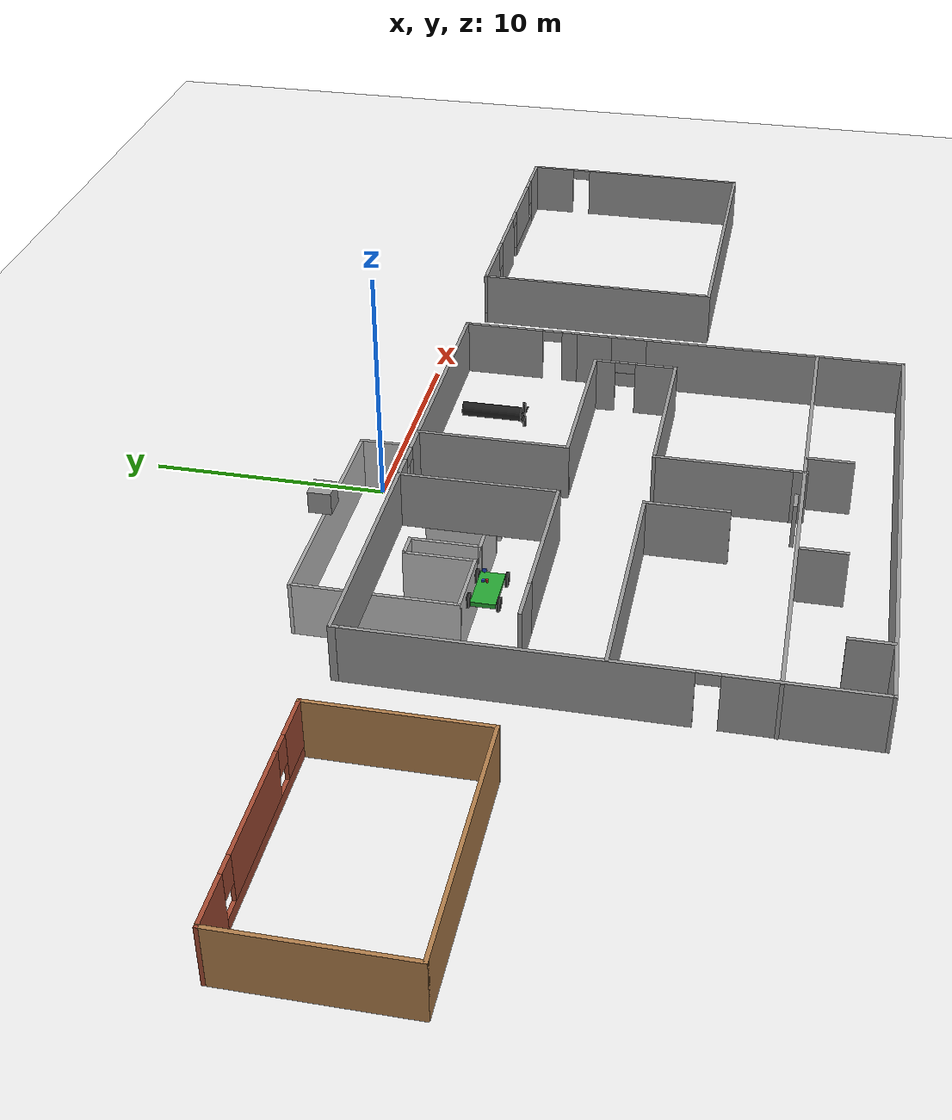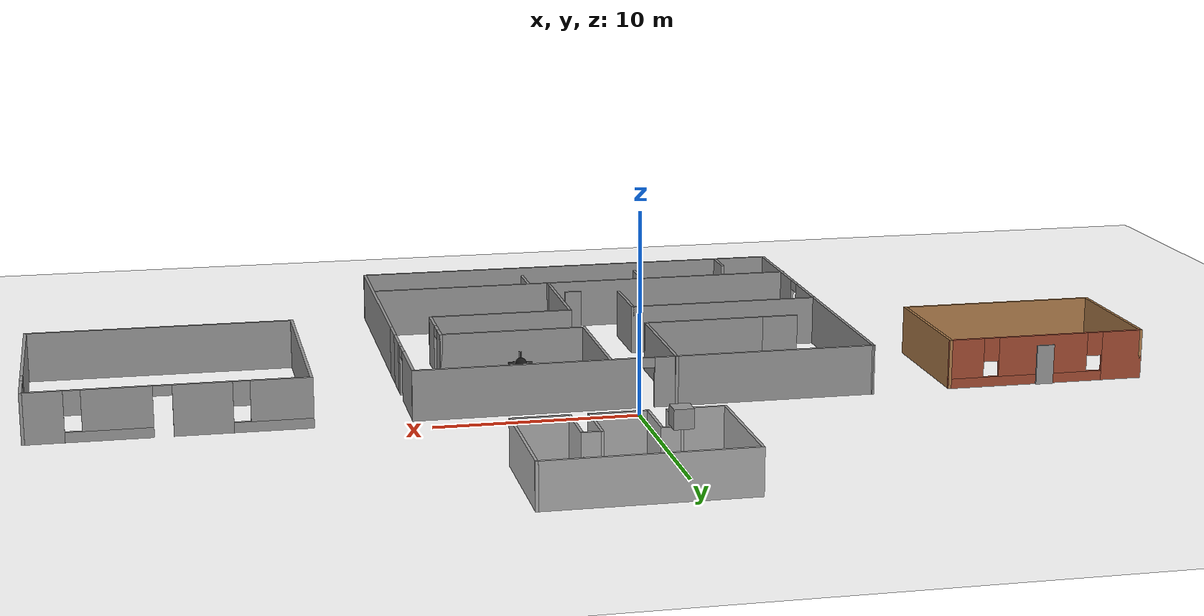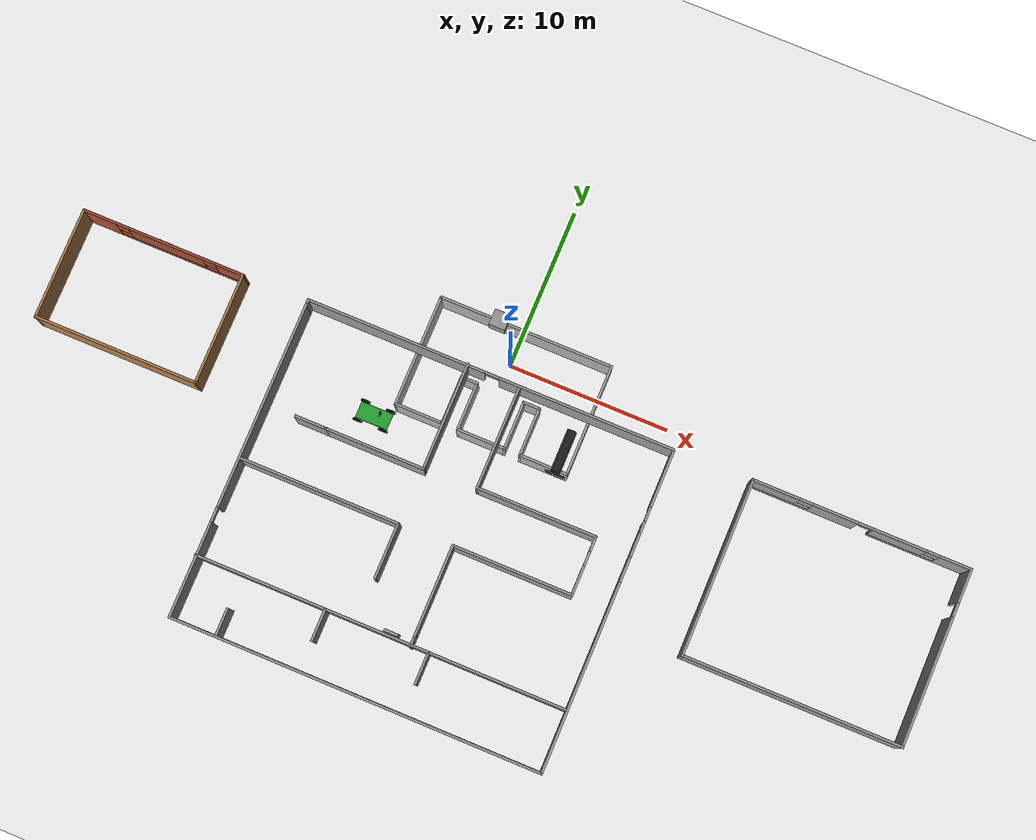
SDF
<sdf version="1.7">
 <world name="default">
  <light name="sun" type="directional">
   <pose>0 0 10 0 -0 0</pose>
   <diffuse>0.8 0.8 0.8 1</diffuse>
   <specular>0.2 0.2 0.2 1</specular>
   <attenuation>
    <range>1000</range>
    <constant>0.9</constant>
    <linear>0.01</linear>
    <quadratic>0.001</quadratic>
   </attenuation>
   <direction>-0.5 0.1 -0.9</direction>
   <spot><inner_angle>0</inner_angle><outer_angle>0</outer_angle><falloff>0</falloff></spot>
  </light>
  <model name="ground_plane">
   <static>1</static>
   <link name="link">
    <collision name="collision">
     <geometry><plane><normal>0 0 1</normal><size>100 100</size></plane></geometry>
     <surface>
      <contact><collide_bitmask>65535</collide_bitmask></contact>
      <friction><ode><mu>100</mu><mu2>50</mu2></ode></friction>
     </surface>
    </collision>
    <visual name="visual">
     <cast_shadows>0</cast_shadows>
     <geometry><plane><normal>0 0 1</normal><size>100 100</size></plane></geometry>
     <material>
      <script><uri>file://media/materials/scripts/gazebo.material</uri><name>Gazebo/Grey</name></script>
     </material>
    </visual>
   </link>
  </model>
  <gravity>0 0 -9.8</gravity>
  <magnetic_field>6e-06 2.3e-05 -4.2e-05</magnetic_field>
  <atmosphere type="adiabatic"/>
  <physics name="default_physics" default="0" type="ode">
   <max_step_size>0.001</max_step_size>
   <real_time_factor>1</real_time_factor>
   <real_time_update_rate>1000</real_time_update_rate>
  </physics>
  <scene><ambient>0.4 0.4 0.4 1</ambient><background>0.7 0.7 0.7 1</background><shadows>1</shadows></scene>
  <spherical_coordinates>
   <surface_model>EARTH_WGS84</surface_model>
   <latitude_deg>0</latitude_deg>
   <longitude_deg>0</longitude_deg>
   <elevation>0</elevation>
   <heading_deg>0</heading_deg>
  </spherical_coordinates>
  <model name="warehouse">
   <pose>0 -1 -3.63535 0 -0 0</pose>
   <link name="Wall_13">
    <collision name="Wall_13_Collision">
     <geometry><box><size>7.15 0.15 2.5</size></box></geometry>
     <pose>0 0 1.25 0 -0 0</pose>
    </collision>
    <visual name="Wall_13_Visual">
     <pose>0 0 1.25 0 -0 0</pose>
     <geometry><box><size>7.15 0.15 2.5</size></box></geometry>
     <material>
      <script><uri>file://media/materials/scripts/gazebo.material</uri><name>Gazebo/Grey</name></script>
      <ambient>1 1 1 1</ambient>
     </material>
     <meta><layer>0</layer></meta>
    </visual>
    <pose>-5.5 0 0 0 -0 -1.5708</pose>
   </link>
   <link name="Wall_14">
    <collision name="Wall_14_Collision">
     <geometry><box><size>3.15 0.15 2.5</size></box></geometry>
     <pose>0 0 1.25 0 -0 0</pose>
    </collision>
    <visual name="Wall_14_Visual">
     <pose>0 0 1.25 0 -0 0</pose>
     <geometry><box><size>3.15 0.15 2.5</size></box></geometry>
     <material>
      <script><uri>file://media/materials/scripts/gazebo.material</uri><name>Gazebo/Grey</name></script>
      <ambient>1 1 1 1</ambient>
     </material>
     <meta><layer>0</layer></meta>
    </visual>
    <pose>-4 -3.5 0 0 -0 0</pose>
   </link>
   <link name="Wall_15">
    <collision name="Wall_15_Collision">
     <geometry><box><size>3.15 0.15 2.5</size></box></geometry>
     <pose>0 0 1.25 0 -0 0</pose>
    </collision>
    <visual name="Wall_15_Visual">
     <pose>0 0 1.25 0 -0 0</pose>
     <geometry><box><size>3.15 0.15 2.5</size></box></geometry>
     <material>
      <script><uri>file://media/materials/scripts/gazebo.material</uri><name>Gazebo/Grey</name></script>
      <ambient>1 1 1 1</ambient>
     </material>
     <meta><layer>0</layer></meta>
    </visual>
    <pose>-2.5 -2 0 0 -0 1.5708</pose>
   </link>
   <link name="Wall_16">
    <collision name="Wall_16_Collision">
     <geometry><box><size>1.15 0.15 2.5</size></box></geometry>
     <pose>0 0 1.25 0 -0 0</pose>
    </collision>
    <visual name="Wall_16_Visual">
     <pose>0 0 1.25 0 -0 0</pose>
     <geometry><box><size>1.15 0.15 2.5</size></box></geometry>
     <material>
      <script><uri>file://media/materials/scripts/gazebo.material</uri><name>Gazebo/Grey</name></script>
      <ambient>1 1 1 1</ambient>
     </material>
     <meta><layer>0</layer></meta>
    </visual>
    <pose>-2 -0.5 0 0 -0 0</pose>
   </link>
   <link name="Wall_17">
    <collision name="Wall_17_Collision">
     <geometry><box><size>3.15 0.15 2.5</size></box></geometry>
     <pose>0 0 1.25 0 -0 0</pose>
    </collision>
    <visual name="Wall_17_Visual">
     <pose>0 0 1.25 0 -0 0</pose>
     <geometry><box><size>3.15 0.15 2.5</size></box></geometry>
     <material>
      <script><uri>file://media/materials/scripts/gazebo.material</uri><name>Gazebo/Grey</name></script>
      <ambient>1 1 1 1</ambient>
     </material>
     <meta><layer>0</layer></meta>
    </visual>
    <pose>-1.5 -2 0 0 -0 -1.5708</pose>
   </link>
   <link name="Wall_18">
    <collision name="Wall_18_Collision">
     <geometry><box><size>3.15 0.15 2.5</size></box></geometry>
     <pose>0 0 1.25 0 -0 0</pose>
    </collision>
    <visual name="Wall_18_Visual">
     <pose>0 0 1.25 0 -0 0</pose>
     <geometry><box><size>3.15 0.15 2.5</size></box></geometry>
     <material>
      <script><uri>file://media/materials/scripts/gazebo.material</uri><name>Gazebo/Grey</name></script>
      <ambient>1 1 1 1</ambient>
     </material>
     <meta><layer>0</layer></meta>
    </visual>
    <pose>0 -3.5 0 0 -0 0</pose>
   </link>
   <link name="Wall_19">
    <collision name="Wall_19_Collision">
     <geometry><box><size>3.15 0.15 2.5</size></box></geometry>
     <pose>0 0 1.25 0 -0 0</pose>
    </collision>
    <visual name="Wall_19_Visual">
     <pose>0 0 1.25 0 -0 0</pose>
     <geometry><box><size>3.15 0.15 2.5</size></box></geometry>
     <material>
      <script><uri>file://media/materials/scripts/gazebo.material</uri><name>Gazebo/Grey</name></script>
      <ambient>1 1 1 1</ambient>
     </material>
     <meta><layer>0</layer></meta>
    </visual>
    <pose>1.5 -2 0 0 -0 1.5708</pose>
   </link>
   <link name="Wall_20">
    <collision name="Wall_20_Collision">
     <geometry><box><size>1.15 0.15 2.5</size></box></geometry>
     <pose>0 0 1.25 0 -0 0</pose>
    </collision>
    <visual name="Wall_20_Visual">
     <pose>0 0 1.25 0 -0 0</pose>
     <geometry><box><size>1.15 0.15 2.5</size></box></geometry>
     <material>
      <script><uri>file://media/materials/scripts/gazebo.material</uri><name>Gazebo/Grey</name></script>
      <ambient>1 1 1 1</ambient>
     </material>
     <meta><layer>0</layer></meta>
    </visual>
    <pose>2 -0.5 0 0 -0 0</pose>
   </link>
   <link name="Wall_21">
    <collision name="Wall_21_Collision">
     <geometry><box><size>3.15 0.15 2.5</size></box></geometry>
     <pose>0 0 1.25 0 -0 0</pose>
    </collision>
    <visual name="Wall_21_Visual">
     <pose>0 0 1.25 0 -0 0</pose>
     <geometry><box><size>3.15 0.15 2.5</size></box></geometry>
     <material>
      <script><uri>file://media/materials/scripts/gazebo.material</uri><name>Gazebo/Grey</name></script>
      <ambient>1 1 1 1</ambient>
     </material>
     <meta><layer>0</layer></meta>
    </visual>
    <pose>2.5 -2 0 0 -0 -1.5708</pose>
   </link>
   <link name="Wall_22">
    <collision name="Wall_22_Collision">
     <geometry><box><size>3.15 0.15 2.5</size></box></geometry>
     <pose>0 0 1.25 0 -0 0</pose>
    </collision>
    <visual name="Wall_22_Visual">
     <pose>0 0 1.25 0 -0 0</pose>
     <geometry><box><size>3.15 0.15 2.5</size></box></geometry>
     <material>
      <script><uri>file://media/materials/scripts/gazebo.material</uri><name>Gazebo/Grey</name></script>
      <ambient>1 1 1 1</ambient>
     </material>
     <meta><layer>0</layer></meta>
    </visual>
    <pose>4 -3.5 0 0 -0 0</pose>
   </link>
   <link name="Wall_23">
    <collision name="Wall_23_Collision">
     <geometry><box><size>7.15 0.15 2.5</size></box></geometry>
     <pose>0 0 1.25 0 -0 0</pose>
    </collision>
    <visual name="Wall_23_Visual">
     <pose>0 0 1.25 0 -0 0</pose>
     <geometry><box><size>7.15 0.15 2.5</size></box></geometry>
     <material>
      <script><uri>file://media/materials/scripts/gazebo.material</uri><name>Gazebo/Grey</name></script>
      <ambient>1 1 1 1</ambient>
     </material>
     <meta><layer>0</layer></meta>
    </visual>
    <pose>5.5 0 0 0 -0 1.5708</pose>
   </link>
   <link name="Wall_24">
    <collision name="Wall_24_Collision">
     <geometry><box><size>11.15 0.15 2.5</size></box></geometry>
     <pose>0 0 1.25 0 -0 0</pose>
    </collision>
    <visual name="Wall_24_Visual">
     <pose>0 0 1.25 0 -0 0</pose>
     <geometry><box><size>11.15 0.15 2.5</size></box></geometry>
     <material>
      <script><uri>file://media/materials/scripts/gazebo.material</uri><name>Gazebo/Grey</name></script>
      <ambient>1 1 1 1</ambient>
     </material>
     <meta><layer>0</layer></meta>
    </visual>
    <pose>0 3.5 0 0 -0 3.14159</pose>
   </link>
   <static>1</static>
  </model>
  <model name="Generic_1_room_house_1">
   <pose>-21.2646 -3.37904 0 0 -0 0</pose>
   <link name="Door_6">
    <collision name="Door_6_Collision">
     <geometry><box><size>0.9 0.17 2</size></box></geometry>
     <pose>0 0 1 0 -0 0</pose>
    </collision>
    <visual name="Door_6_Visual">
     <pose>0 0 1 0 -0 0</pose>
     <geometry><box><size>0.9 0.17 2</size></box></geometry>
     <material>
      <script><uri>file://media/materials/scripts/gazebo.material</uri><name>Gazebo/Grey</name></script>
     </material>
    </visual>
    <pose>0.067315 2.02255 0 0 -0 3.13799</pose>
   </link>
   <link name="Wall_22">
    <pose>-0 1.93414 0 0 -0 0</pose>
    <visual name="Wall_22_Visual_0">
     <pose>-4.05311 0 1.25 0 -0 0</pose>
     <geometry><box><size>2.14379 0.15 2.5</size></box></geometry>
     <material>
      <script><uri>file://media/materials/scripts/gazebo.material</uri><name>Gazebo/Bricks</name></script>
      <ambient>1 1 1 1</ambient>
     </material>
     <meta><layer>0</layer></meta>
    </visual>
    <collision name="Wall_22_Collision_0">
     <geometry><box><size>2.14379 0.15 2.5</size></box></geometry>
     <pose>-4.05311 0 1.25 0 -0 0</pose>
    </collision>
    <visual name="Wall_22_Visual_1">
     <pose>1.0719 0 0.25 0 -0 0</pose>
     <geometry><box><size>8.10621 0.15 0.5</size></box></geometry>
     <material>
      <script><uri>file://media/materials/scripts/gazebo.material</uri><name>Gazebo/Bricks</name></script>
      <ambient>1 1 1 1</ambient>
     </material>
     <meta><layer>0</layer></meta>
    </visual>
    <collision name="Wall_22_Collision_1">
     <geometry><box><size>8.10621 0.15 0.5</size></box></geometry>
     <pose>1.0719 0 0.25 0 -0 0</pose>
    </collision>
    <visual name="Wall_22_Visual_2">
     <pose>0.160358 0 1.5 0 -0 0</pose>
     <geometry><box><size>4.68314 0.15 2</size></box></geometry>
     <material>
      <script><uri>file://media/materials/scripts/gazebo.material</uri><name>Gazebo/Bricks</name></script>
      <ambient>1 1 1 1</ambient>
     </material>
     <meta><layer>0</layer></meta>
    </visual>
    <collision name="Wall_22_Collision_2">
     <geometry><box><size>4.68314 0.15 2</size></box></geometry>
     <pose>0.160358 0 1.5 0 -0 0</pose>
    </collision>
    <visual name="Wall_22_Visual_3">
     <pose>4.21346 0 1.5 0 -0 0</pose>
     <geometry><box><size>1.82308 0.15 2</size></box></geometry>
     <material>
      <script><uri>file://media/materials/scripts/gazebo.material</uri><name>Gazebo/Bricks</name></script>
      <ambient>1 1 1 1</ambient>
     </material>
     <meta><layer>0</layer></meta>
    </visual>
    <collision name="Wall_22_Collision_3">
     <geometry><box><size>1.82308 0.15 2</size></box></geometry>
     <pose>4.21346 0 1.5 0 -0 0</pose>
    </collision>
    <visual name="Wall_22_Visual_4">
     <pose>-2.58121 0 1.9 0 -0 0</pose>
     <geometry><box><size>0.8 0.15 1.2</size></box></geometry>
     <material>
      <script><uri>file://media/materials/scripts/gazebo.material</uri><name>Gazebo/Bricks</name></script>
      <ambient>1 1 1 1</ambient>
     </material>
     <meta><layer>0</layer></meta>
    </visual>
    <collision name="Wall_22_Collision_4">
     <geometry><box><size>0.8 0.15 1.2</size></box></geometry>
     <pose>-2.58121 0 1.9 0 -0 0</pose>
    </collision>
    <visual name="Wall_22_Visual_5">
     <pose>2.90192 0 1.9 0 -0 0</pose>
     <geometry><box><size>0.8 0.15 1.2</size></box></geometry>
     <material>
      <script><uri>file://media/materials/scripts/gazebo.material</uri><name>Gazebo/Bricks</name></script>
      <ambient>1 1 1 1</ambient>
     </material>
     <meta><layer>0</layer></meta>
    </visual>
    <collision name="Wall_22_Collision_5">
     <geometry><box><size>0.8 0.15 1.2</size></box></geometry>
     <pose>2.90192 0 1.9 0 -0 0</pose>
    </collision>
   </link>
   <link name="Wall_27">
    <collision name="Wall_27_Collision">
     <geometry><box><size>7 0.15 2.5</size></box></geometry>
     <pose>0 0 1.25 0 -0 0</pose>
    </collision>
    <visual name="Wall_27_Visual">
     <pose>0 0 1.25 0 -0 0</pose>
     <geometry><box><size>7 0.15 2.5</size></box></geometry>
     <material>
      <script><uri>file://media/materials/scripts/gazebo.material</uri><name>Gazebo/Wood</name></script>
      <ambient>1 1 1 1</ambient>
     </material>
     <meta><layer>0</layer></meta>
    </visual>
    <pose>-5.05 -1.49086 0 0 -0 -1.5708</pose>
   </link>
   <link name="Wall_28">
    <collision name="Wall_28_Collision">
     <geometry><box><size>10.25 0.15 2.5</size></box></geometry>
     <pose>0 0 1.25 0 -0 0</pose>
    </collision>
    <visual name="Wall_28_Visual">
     <pose>0 0 1.25 0 -0 0</pose>
     <geometry><box><size>10.25 0.15 2.5</size></box></geometry>
     <material>
      <script><uri>file://media/materials/scripts/gazebo.material</uri><name>Gazebo/Wood</name></script>
      <ambient>1 1 1 1</ambient>
     </material>
     <meta><layer>0</layer></meta>
    </visual>
    <pose>-0 -4.91586 0 0 -0 0</pose>
   </link>
   <link name="Wall_29">
    <collision name="Wall_29_Collision">
     <geometry><box><size>7 0.15 2.5</size></box></geometry>
     <pose>0 0 1.25 0 -0 0</pose>
    </collision>
    <visual name="Wall_29_Visual">
     <pose>0 0 1.25 0 -0 0</pose>
     <geometry><box><size>7 0.15 2.5</size></box></geometry>
     <material>
      <script><uri>file://media/materials/scripts/gazebo.material</uri><name>Gazebo/Wood</name></script>
      <ambient>1 1 1 1</ambient>
     </material>
     <meta><layer>0</layer></meta>
    </visual>
    <pose>5.05 -1.49086 0 0 -0 1.5708</pose>
   </link>
   <static>1</static>
  </model>
  <model name="Multi-Door_building">
   <pose>22.2268 -6.60509 0 0 -0 0</pose>
   <link name="Wall_5">
    <collision name="Wall_5_Collision">
     <geometry><box><size>11 0.15 2.5</size></box></geometry>
     <pose>0 0 1.25 0 -0 0</pose>
    </collision>
    <visual name="Wall_5_Visual">
     <pose>0 0 1.25 0 -0 0</pose>
     <geometry><box><size>11 0.15 2.5</size></box></geometry>
     <material>
      <script><uri>file://media/materials/scripts/gazebo.material</uri><name>Gazebo/Grey</name></script>
      <ambient>1 1 1 1</ambient>
     </material>
     <meta><layer>0</layer></meta>
    </visual>
    <pose>-6.675 -0 0 0 -0 -1.5708</pose>
   </link>
   <link name="Wall_6">
    <collision name="Wall_6_Collision">
     <geometry><box><size>13.5 0.15 2.5</size></box></geometry>
     <pose>0 0 1.25 0 -0 0</pose>
    </collision>
    <visual name="Wall_6_Visual">
     <pose>0 0 1.25 0 -0 0</pose>
     <geometry><box><size>13.5 0.15 2.5</size></box></geometry>
     <material>
      <script><uri>file://media/materials/scripts/gazebo.material</uri><name>Gazebo/Grey</name></script>
      <ambient>1 1 1 1</ambient>
     </material>
     <meta><layer>0</layer></meta>
    </visual>
    <pose>0 -5.425 0 0 -0 0</pose>
   </link>
   <link name="Wall_7">
    <pose>6.675 -0 0 0 -0 1.5708</pose>
    <visual name="Wall_7_Visual_0">
     <pose>-1.51662 0 1.25 0 -0 0</pose>
     <geometry><box><size>7.96675 0.15 2.5</size></box></geometry>
     <material>
      <script><uri>file://media/materials/scripts/gazebo.material</uri><name>Gazebo/Grey</name></script>
      <ambient>1 1 1 1</ambient>
     </material>
     <meta><layer>0</layer></meta>
    </visual>
    <collision name="Wall_7_Collision_0">
     <geometry><box><size>7.96675 0.15 2.5</size></box></geometry>
     <pose>-1.51662 0 1.25 0 -0 0</pose>
    </collision>
    <visual name="Wall_7_Visual_1">
     <pose>4.43338 0 1.25 0 -0 0</pose>
     <geometry><box><size>2.13325 0.15 2.5</size></box></geometry>
     <material>
      <script><uri>file://media/materials/scripts/gazebo.material</uri><name>Gazebo/Grey</name></script>
      <ambient>1 1 1 1</ambient>
     </material>
     <meta><layer>0</layer></meta>
    </visual>
    <collision name="Wall_7_Collision_1">
     <geometry><box><size>2.13325 0.15 2.5</size></box></geometry>
     <pose>4.43338 0 1.25 0 -0 0</pose>
    </collision>
    <visual name="Wall_7_Visual_2">
     <pose>2.91675 0 2.25 0 -0 0</pose>
     <geometry><box><size>0.9 0.15 0.5</size></box></geometry>
     <material>
      <script><uri>file://media/materials/scripts/gazebo.material</uri><name>Gazebo/Grey</name></script>
      <ambient>1 1 1 1</ambient>
     </material>
     <meta><layer>0</layer></meta>
    </visual>
    <collision name="Wall_7_Collision_2">
     <geometry><box><size>0.9 0.15 0.5</size></box></geometry>
     <pose>2.91675 0 2.25 0 -0 0</pose>
    </collision>
   </link>
   <link name="Wall_8">
    <pose>0 5.425 0 0 -0 3.14159</pose>
    <visual name="Wall_8_Visual_0">
     <pose>-5.75969 0 1.25 0 -0 0</pose>
     <geometry><box><size>1.98063 0.15 2.5</size></box></geometry>
     <material>
      <script><uri>file://media/materials/scripts/gazebo.material</uri><name>Gazebo/Grey</name></script>
      <ambient>1 1 1 1</ambient>
     </material>
     <meta><layer>0</layer></meta>
    </visual>
    <collision name="Wall_8_Collision_0">
     <geometry><box><size>1.98063 0.15 2.5</size></box></geometry>
     <pose>-5.75969 0 1.25 0 -0 0</pose>
    </collision>
    <visual name="Wall_8_Visual_1">
     <pose>1.6026 0 1.25 0 -0 0</pose>
     <geometry><box><size>2.791 0.15 2.5</size></box></geometry>
     <material>
      <script><uri>file://media/materials/scripts/gazebo.material</uri><name>Gazebo/Grey</name></script>
      <ambient>1 1 1 1</ambient>
     </material>
     <meta><layer>0</layer></meta>
    </visual>
    <collision name="Wall_8_Collision_1">
     <geometry><box><size>2.791 0.15 2.5</size></box></geometry>
     <pose>1.6026 0 1.25 0 -0 0</pose>
    </collision>
    <visual name="Wall_8_Visual_2">
     <pose>-2.73114 0 0.25 0 -0 0</pose>
     <geometry><box><size>4.07647 0.15 0.5</size></box></geometry>
     <material>
      <script><uri>file://media/materials/scripts/gazebo.material</uri><name>Gazebo/Grey</name></script>
      <ambient>1 1 1 1</ambient>
     </material>
     <meta><layer>0</layer></meta>
    </visual>
    <collision name="Wall_8_Collision_2">
     <geometry><box><size>4.07647 0.15 0.5</size></box></geometry>
     <pose>-2.73114 0 0.25 0 -0 0</pose>
    </collision>
    <visual name="Wall_8_Visual_3">
     <pose>4.87405 0 0.25 0 -0 0</pose>
     <geometry><box><size>3.7519 0.15 0.5</size></box></geometry>
     <material>
      <script><uri>file://media/materials/scripts/gazebo.material</uri><name>Gazebo/Grey</name></script>
      <ambient>1 1 1 1</ambient>
     </material>
     <meta><layer>0</layer></meta>
    </visual>
    <collision name="Wall_8_Collision_3">
     <geometry><box><size>3.7519 0.15 0.5</size></box></geometry>
     <pose>4.87405 0 0.25 0 -0 0</pose>
    </collision>
    <visual name="Wall_8_Visual_4">
     <pose>-2.33114 0 1.5 0 -0 0</pose>
     <geometry><box><size>3.27647 0.15 2</size></box></geometry>
     <material>
      <script><uri>file://media/materials/scripts/gazebo.material</uri><name>Gazebo/Grey</name></script>
      <ambient>1 1 1 1</ambient>
     </material>
     <meta><layer>0</layer></meta>
    </visual>
    <collision name="Wall_8_Collision_4">
     <geometry><box><size>3.27647 0.15 2</size></box></geometry>
     <pose>-2.33114 0 1.5 0 -0 0</pose>
    </collision>
    <visual name="Wall_8_Visual_5">
     <pose>-2.33114 0 1.5 0 -0 0</pose>
     <geometry><box><size>3.27647 0.15 2</size></box></geometry>
     <material>
      <script><uri>file://media/materials/scripts/gazebo.material</uri><name>Gazebo/Grey</name></script>
      <ambient>1 1 1 1</ambient>
     </material>
     <meta><layer>0</layer></meta>
    </visual>
    <collision name="Wall_8_Collision_5">
     <geometry><box><size>3.27647 0.15 2</size></box></geometry>
     <pose>-2.33114 0 1.5 0 -0 0</pose>
    </collision>
    <visual name="Wall_8_Visual_6">
     <pose>5.27405 0 1.5 0 -0 0</pose>
     <geometry><box><size>2.9519 0.15 2</size></box></geometry>
     <material>
      <script><uri>file://media/materials/scripts/gazebo.material</uri><name>Gazebo/Grey</name></script>
      <ambient>1 1 1 1</ambient>
     </material>
     <meta><layer>0</layer></meta>
    </visual>
    <collision name="Wall_8_Collision_6">
     <geometry><box><size>2.9519 0.15 2</size></box></geometry>
     <pose>5.27405 0 1.5 0 -0 0</pose>
    </collision>
    <visual name="Wall_8_Visual_7">
     <pose>-4.36937 0 1.9 0 -0 0</pose>
     <geometry><box><size>0.8 0.15 1.2</size></box></geometry>
     <material>
      <script><uri>file://media/materials/scripts/gazebo.material</uri><name>Gazebo/Grey</name></script>
      <ambient>1 1 1 1</ambient>
     </material>
     <meta><layer>0</layer></meta>
    </visual>
    <collision name="Wall_8_Collision_7">
     <geometry><box><size>0.8 0.15 1.2</size></box></geometry>
     <pose>-4.36937 0 1.9 0 -0 0</pose>
    </collision>
    <visual name="Wall_8_Visual_8">
     <pose>3.3981 0 1.9 0 -0 0</pose>
     <geometry><box><size>0.8 0.15 1.2</size></box></geometry>
     <material>
      <script><uri>file://media/materials/scripts/gazebo.material</uri><name>Gazebo/Grey</name></script>
      <ambient>1 1 1 1</ambient>
     </material>
     <meta><layer>0</layer></meta>
    </visual>
    <collision name="Wall_8_Collision_8">
     <geometry><box><size>0.8 0.15 1.2</size></box></geometry>
     <pose>3.3981 0 1.9 0 -0 0</pose>
    </collision>
    <visual name="Wall_8_Visual_9">
     <pose>-0.242904 0 2.25 0 -0 0</pose>
     <geometry><box><size>0.9 0.15 0.5</size></box></geometry>
     <material>
      <script><uri>file://media/materials/scripts/gazebo.material</uri><name>Gazebo/Grey</name></script>
      <ambient>1 1 1 1</ambient>
     </material>
     <meta><layer>0</layer></meta>
    </visual>
    <collision name="Wall_8_Collision_9">
     <geometry><box><size>0.9 0.15 0.5</size></box></geometry>
     <pose>-0.242904 0 2.25 0 -0 0</pose>
    </collision>
    <visual name="Wall_8_Visual_10">
     <pose>-0.242904 0 2.25 0 -0 0</pose>
     <geometry><box><size>0.9 0.15 0.5</size></box></geometry>
     <material>
      <script><uri>file://media/materials/scripts/gazebo.material</uri><name>Gazebo/Grey</name></script>
      <ambient>1 1 1 1</ambient>
     </material>
     <meta><layer>0</layer></meta>
    </visual>
    <collision name="Wall_8_Collision_10">
     <geometry><box><size>0.9 0.15 0.5</size></box></geometry>
     <pose>-0.242904 0 2.25 0 -0 0</pose>
    </collision>
   </link>
   <static>1</static>
  </model>
  <model name="Multi_room_building">
   <pose>-0.723658 -10.0263 0 0 -0 0</pose>
   <link name="Door_3">
    <collision name="Door_3_Collision">
     <geometry><box><size>0.9 0.17 2</size></box></geometry>
     <pose>0 0 1 0 -0 0</pose>
    </collision>
    <visual name="Door_3_Visual">
     <pose>0 0 1 0 -0 0</pose>
     <geometry><box><size>0.9 0.17 2</size></box></geometry>
     <material>
      <script><uri>file://media/materials/scripts/gazebo.material</uri><name>Gazebo/Grey</name></script>
     </material>
    </visual>
    <pose>0.509152 -7.15046 0 0 -0 0</pose>
   </link>
   <link name="Wall_16">
    <pose>0.019726 8.70583 0 0 -0 0</pose>
    <visual name="Wall_16_Visual_0">
     <pose>-5.91708 0 1.25 0 -0 0</pose>
     <geometry><box><size>11.1658 0.15 2.5</size></box></geometry>
     <material>
      <script><uri>file://media/materials/scripts/gazebo.material</uri><name>Gazebo/Grey</name></script>
      <ambient>1 1 1 1</ambient>
     </material>
     <meta><layer>0</layer></meta>
    </visual>
    <collision name="Wall_16_Collision_0">
     <geometry><box><size>11.1658 0.15 2.5</size></box></geometry>
     <pose>-5.91708 0 1.25 0 -0 0</pose>
    </collision>
    <visual name="Wall_16_Visual_1">
     <pose>6.03292 0 1.25 0 -0 0</pose>
     <geometry><box><size>10.9342 0.15 2.5</size></box></geometry>
     <material>
      <script><uri>file://media/materials/scripts/gazebo.material</uri><name>Gazebo/Grey</name></script>
      <ambient>1 1 1 1</ambient>
     </material>
     <meta><layer>0</layer></meta>
    </visual>
    <collision name="Wall_16_Collision_1">
     <geometry><box><size>10.9342 0.15 2.5</size></box></geometry>
     <pose>6.03292 0 1.25 0 -0 0</pose>
    </collision>
    <visual name="Wall_16_Visual_2">
     <pose>0.115847 0 2.25 0 -0 0</pose>
     <geometry><box><size>0.9 0.15 0.5</size></box></geometry>
     <material>
      <script><uri>file://media/materials/scripts/gazebo.material</uri><name>Gazebo/Grey</name></script>
      <ambient>1 1 1 1</ambient>
     </material>
     <meta><layer>0</layer></meta>
    </visual>
    <collision name="Wall_16_Collision_2">
     <geometry><box><size>0.9 0.15 0.5</size></box></geometry>
     <pose>0.115847 0 2.25 0 -0 0</pose>
    </collision>
   </link>
   <link name="Wall_17">
    <pose>11.4447 6.15583 0 0 -0 -1.5708</pose>
    <visual name="Wall_17_Visual_0">
     <pose>-0.807552 0 1.25 0 -0 0</pose>
     <geometry><box><size>3.6349 0.15 2.5</size></box></geometry>
     <material>
      <script><uri>file://media/materials/scripts/gazebo.material</uri><name>Gazebo/Grey</name></script>
      <ambient>1 1 1 1</ambient>
     </material>
     <meta><layer>0</layer></meta>
    </visual>
    <collision name="Wall_17_Collision_0">
     <geometry><box><size>3.6349 0.15 2.5</size></box></geometry>
     <pose>-0.807552 0 1.25 0 -0 0</pose>
    </collision>
    <visual name="Wall_17_Visual_1">
     <pose>2.26745 0 1.25 0 -0 0</pose>
     <geometry><box><size>0.715105 0.15 2.5</size></box></geometry>
     <material>
      <script><uri>file://media/materials/scripts/gazebo.material</uri><name>Gazebo/Grey</name></script>
      <ambient>1 1 1 1</ambient>
     </material>
     <meta><layer>0</layer></meta>
    </visual>
    <collision name="Wall_17_Collision_1">
     <geometry><box><size>0.715105 0.15 2.5</size></box></geometry>
     <pose>2.26745 0 1.25 0 -0 0</pose>
    </collision>
    <visual name="Wall_17_Visual_2">
     <pose>1.45989 0 2.25 0 -0 0</pose>
     <geometry><box><size>0.9 0.15 0.5</size></box></geometry>
     <material>
      <script><uri>file://media/materials/scripts/gazebo.material</uri><name>Gazebo/Grey</name></script>
      <ambient>1 1 1 1</ambient>
     </material>
     <meta><layer>0</layer></meta>
    </visual>
    <collision name="Wall_17_Collision_2">
     <geometry><box><size>0.9 0.15 0.5</size></box></geometry>
     <pose>1.45989 0 2.25 0 -0 0</pose>
    </collision>
   </link>
   <link name="Wall_18">
    <collision name="Wall_18_Collision">
     <geometry><box><size>1.75 0.15 2.5</size></box></geometry>
     <pose>0 0 1.25 0 -0 0</pose>
    </collision>
    <visual name="Wall_18_Visual">
     <pose>0 0 1.25 0 -0 0</pose>
     <geometry><box><size>1.75 0.15 2.5</size></box></geometry>
     <material>
      <script><uri>file://media/materials/scripts/gazebo.material</uri><name>Gazebo/Grey</name></script>
      <ambient>1 1 1 1</ambient>
     </material>
     <meta><layer>0</layer></meta>
    </visual>
    <pose>11.4447 2.80583 0 0 -0 -1.5708</pose>
   </link>
   <link name="Wall_20">
    <collision name="Wall_20_Collision">
     <geometry><box><size>1.75 0.15 2.5</size></box></geometry>
     <pose>0 0 1.25 0 -0 0</pose>
    </collision>
    <visual name="Wall_20_Visual">
     <pose>0 0 1.25 0 -0 0</pose>
     <geometry><box><size>1.75 0.15 2.5</size></box></geometry>
     <material>
      <script><uri>file://media/materials/scripts/gazebo.material</uri><name>Gazebo/Grey</name></script>
      <ambient>1 1 1 1</ambient>
     </material>
     <meta><layer>0</layer></meta>
    </visual>
    <pose>11.4447 1.20583 0 0 -0 -1.5708</pose>
   </link>
   <link name="Wall_22">
    <collision name="Wall_22_Collision">
     <geometry><box><size>11.75 0.15 2.5</size></box></geometry>
     <pose>0 0 1.25 0 -0 0</pose>
    </collision>
    <visual name="Wall_22_Visual">
     <pose>0 0 1.25 0 -0 0</pose>
     <geometry><box><size>11.75 0.15 2.5</size></box></geometry>
     <material>
      <script><uri>file://media/materials/scripts/gazebo.material</uri><name>Gazebo/Grey</name></script>
      <ambient>1 1 1 1</ambient>
     </material>
     <meta><layer>0</layer></meta>
    </visual>
    <pose>11.4447 -5.39417 0 0 -0 -1.5708</pose>
   </link>
   <link name="Wall_23">
    <collision name="Wall_23_Collision">
     <geometry><box><size>23 0.15 2.5</size></box></geometry>
     <pose>0 0 1.25 0 -0 0</pose>
    </collision>
    <visual name="Wall_23_Visual">
     <pose>0 0 1.25 0 -0 0</pose>
     <geometry><box><size>23 0.15 2.5</size></box></geometry>
     <material>
      <script><uri>file://media/materials/scripts/gazebo.material</uri><name>Gazebo/Grey</name></script>
      <ambient>1 1 1 1</ambient>
     </material>
     <meta><layer>0</layer></meta>
    </visual>
    <pose>0.019726 -11.1942 0 0 -0 3.14159</pose>
   </link>
   <link name="Wall_24">
    <pose>-11.4053 -1.39417 0 0 -0 1.5708</pose>
    <visual name="Wall_24_Visual_0">
     <pose>-6.88983 0 1.25 0 -0 0</pose>
     <geometry><box><size>5.97033 0.15 2.5</size></box></geometry>
     <material>
      <script><uri>file://media/materials/scripts/gazebo.material</uri><name>Gazebo/Grey</name></script>
      <ambient>1 1 1 1</ambient>
     </material>
     <meta><layer>0</layer></meta>
    </visual>
    <collision name="Wall_24_Collision_0">
     <geometry><box><size>5.97033 0.15 2.5</size></box></geometry>
     <pose>-6.88983 0 1.25 0 -0 0</pose>
    </collision>
    <visual name="Wall_24_Visual_1">
     <pose>3.43517 0 1.25 0 -0 0</pose>
     <geometry><box><size>12.8797 0.15 2.5</size></box></geometry>
     <material>
      <script><uri>file://media/materials/scripts/gazebo.material</uri><name>Gazebo/Grey</name></script>
      <ambient>1 1 1 1</ambient>
     </material>
     <meta><layer>0</layer></meta>
    </visual>
    <collision name="Wall_24_Collision_1">
     <geometry><box><size>12.8797 0.15 2.5</size></box></geometry>
     <pose>3.43517 0 1.25 0 -0 0</pose>
    </collision>
    <visual name="Wall_24_Visual_2">
     <pose>-3.45467 0 2.25 0 -0 0</pose>
     <geometry><box><size>0.9 0.15 0.5</size></box></geometry>
     <material>
      <script><uri>file://media/materials/scripts/gazebo.material</uri><name>Gazebo/Grey</name></script>
      <ambient>1 1 1 1</ambient>
     </material>
     <meta><layer>0</layer></meta>
    </visual>
    <collision name="Wall_24_Collision_2">
     <geometry><box><size>0.9 0.15 0.5</size></box></geometry>
     <pose>-3.45467 0 2.25 0 -0 0</pose>
    </collision>
   </link>
   <link name="Wall_25">
    <collision name="Wall_25_Collision">
     <geometry><box><size>0.45 0.15 2.5</size></box></geometry>
     <pose>0 0 1.25 0 -0 0</pose>
    </collision>
    <visual name="Wall_25_Visual">
     <pose>0 0 1.25 0 -0 0</pose>
     <geometry><box><size>0.45 0.15 2.5</size></box></geometry>
     <material>
      <script><uri>file://media/materials/scripts/gazebo.material</uri><name>Gazebo/Grey</name></script>
      <ambient>1 1 1 1</ambient>
     </material>
     <meta><layer>0</layer></meta>
    </visual>
    <pose>-11.4053 8.55583 0 0 -0 1.5708</pose>
   </link>
   <link name="Wall_27">
    <collision name="Wall_27_Collision">
     <geometry><box><size>6.75 0.15 2.5</size></box></geometry>
     <pose>0 0 1.25 0 -0 0</pose>
    </collision>
    <visual name="Wall_27_Visual">
     <pose>0 0 1.25 0 -0 0</pose>
     <geometry><box><size>6.75 0.15 2.5</size></box></geometry>
     <material>
      <script><uri>file://media/materials/scripts/gazebo.material</uri><name>Gazebo/Grey</name></script>
      <ambient>1 1 1 1</ambient>
     </material>
     <meta><layer>0</layer></meta>
    </visual>
    <pose>-1.41448 5.46554 0 0 -0 -1.5708</pose>
   </link>
   <link name="Wall_28">
    <collision name="Wall_28_Collision">
     <geometry><box><size>6.25 0.15 2.5</size></box></geometry>
     <pose>0 0 1.25 0 -0 0</pose>
    </collision>
    <visual name="Wall_28_Visual">
     <pose>0 0 1.25 0 -0 0</pose>
     <geometry><box><size>6.25 0.15 2.5</size></box></geometry>
     <material>
      <script><uri>file://media/materials/scripts/gazebo.material</uri><name>Gazebo/Grey</name></script>
      <ambient>1 1 1 1</ambient>
     </material>
     <meta><layer>0</layer></meta>
    </visual>
    <pose>-4.46448 2.16554 0 0 -0 3.14159</pose>
   </link>
   <link name="Wall_29">
    <collision name="Wall_29_Collision">
     <geometry><box><size>2 0.15 2.5</size></box></geometry>
     <pose>0 0 1.25 0 -0 0</pose>
    </collision>
    <visual name="Wall_29_Visual">
     <pose>0 0 1.25 0 -0 0</pose>
     <geometry><box><size>2 0.15 2.5</size></box></geometry>
     <material>
      <script><uri>file://media/materials/scripts/gazebo.material</uri><name>Gazebo/Grey</name></script>
      <ambient>1 1 1 1</ambient>
     </material>
     <meta><layer>0</layer></meta>
    </visual>
    <pose>-8.43948 2.16554 0 0 -0 3.14159</pose>
   </link>
   <link name="Wall_31">
    <collision name="Wall_31_Collision">
     <geometry><box><size>6.5 0.15 2.5</size></box></geometry>
     <pose>0 0 1.25 0 -0 0</pose>
    </collision>
    <visual name="Wall_31_Visual">
     <pose>0 0 1.25 0 -0 0</pose>
     <geometry><box><size>6.5 0.15 2.5</size></box></geometry>
     <material>
      <script><uri>file://media/materials/scripts/gazebo.material</uri><name>Gazebo/Grey</name></script>
      <ambient>1 1 1 1</ambient>
     </material>
     <meta><layer>0</layer></meta>
    </visual>
    <pose>1.85611 5.52643 0 0 -0 -1.5708</pose>
   </link>
   <link name="Wall_33">
    <collision name="Wall_33_Collision">
     <geometry><box><size>23 0.15 2.5</size></box></geometry>
     <pose>0 0 1.25 0 -0 0</pose>
    </collision>
    <visual name="Wall_33_Visual">
     <pose>0 0 1.25 0 -0 0</pose>
     <geometry><box><size>23 0.15 2.5</size></box></geometry>
     <material>
      <script><uri>file://media/materials/scripts/gazebo.material</uri><name>Gazebo/Grey</name></script>
      <ambient>1 1 1 1</ambient>
     </material>
     <meta><layer>0</layer></meta>
    </visual>
    <pose>-0.019727 -7.37845 0 0 -0 0</pose>
   </link>
   <link name="Wall_35">
    <collision name="Wall_35_Collision">
     <geometry><box><size>7.5 0.15 2.5</size></box></geometry>
     <pose>0 0 1.25 0 -0 0</pose>
    </collision>
    <visual name="Wall_35_Visual">
     <pose>0 0 1.25 0 -0 0</pose>
     <geometry><box><size>7.5 0.15 2.5</size></box></geometry>
     <material>
      <script><uri>file://media/materials/scripts/gazebo.material</uri><name>Gazebo/Grey</name></script>
      <ambient>1 1 1 1</ambient>
     </material>
     <meta><layer>0</layer></meta>
    </visual>
    <pose>5.53111 2.35143 0 0 -0 0</pose>
   </link>
   <link name="Wall_36">
    <pose>9.20611 0.551429 0 0 -0 -1.5708</pose>
    <visual name="Wall_36_Visual_0">
     <pose>-1.38212 0 1.25 0 -0 0</pose>
     <geometry><box><size>0.985757 0.15 2.5</size></box></geometry>
     <material>
      <script><uri>file://media/materials/scripts/gazebo.material</uri><name>Gazebo/Grey</name></script>
      <ambient>1 1 1 1</ambient>
     </material>
     <meta><layer>0</layer></meta>
    </visual>
    <collision name="Wall_36_Collision_0">
     <geometry><box><size>0.985757 0.15 2.5</size></box></geometry>
     <pose>-1.38212 0 1.25 0 -0 0</pose>
    </collision>
    <visual name="Wall_36_Visual_1">
     <pose>0.942878 0 1.25 0 -0 0</pose>
     <geometry><box><size>1.86424 0.15 2.5</size></box></geometry>
     <material>
      <script><uri>file://media/materials/scripts/gazebo.material</uri><name>Gazebo/Grey</name></script>
      <ambient>1 1 1 1</ambient>
     </material>
     <meta><layer>0</layer></meta>
    </visual>
    <collision name="Wall_36_Collision_1">
     <geometry><box><size>1.86424 0.15 2.5</size></box></geometry>
     <pose>0.942878 0 1.25 0 -0 0</pose>
    </collision>
    <visual name="Wall_36_Visual_2">
     <pose>-0.439243 0 2.25 0 -0 0</pose>
     <geometry><box><size>0.9 0.15 0.5</size></box></geometry>
     <material>
      <script><uri>file://media/materials/scripts/gazebo.material</uri><name>Gazebo/Grey</name></script>
      <ambient>1 1 1 1</ambient>
     </material>
     <meta><layer>0</layer></meta>
    </visual>
    <collision name="Wall_36_Collision_2">
     <geometry><box><size>0.9 0.15 0.5</size></box></geometry>
     <pose>-0.439243 0 2.25 0 -0 0</pose>
    </collision>
   </link>
   <link name="Wall_37">
    <collision name="Wall_37_Collision">
     <geometry><box><size>7.5 0.15 2.5</size></box></geometry>
     <pose>0 0 1.25 0 -0 0</pose>
    </collision>
    <visual name="Wall_37_Visual">
     <pose>0 0 1.25 0 -0 0</pose>
     <geometry><box><size>7.5 0.15 2.5</size></box></geometry>
     <material>
      <script><uri>file://media/materials/scripts/gazebo.material</uri><name>Gazebo/Grey</name></script>
      <ambient>1 1 1 1</ambient>
     </material>
     <meta><layer>0</layer></meta>
    </visual>
    <pose>5.53111 -1.24857 0 0 -0 3.14159</pose>
   </link>
   <link name="Wall_38">
    <collision name="Wall_38_Collision">
     <geometry><box><size>5.75 0.15 2.5</size></box></geometry>
     <pose>0 0 1.25 0 -0 0</pose>
    </collision>
    <visual name="Wall_38_Visual">
     <pose>0 0 1.25 0 -0 0</pose>
     <geometry><box><size>5.75 0.15 2.5</size></box></geometry>
     <material>
      <script><uri>file://media/materials/scripts/gazebo.material</uri><name>Gazebo/Grey</name></script>
      <ambient>1 1 1 1</ambient>
     </material>
     <meta><layer>0</layer></meta>
    </visual>
    <pose>1.85611 -4.04857 0 0 -0 -1.5708</pose>
   </link>
   <link name="Wall_46">
    <collision name="Wall_46_Collision">
     <geometry><box><size>0.75 0.15 2.5</size></box></geometry>
     <pose>0 0 1.25 0 -0 0</pose>
    </collision>
    <visual name="Wall_46_Visual">
     <pose>0 0 1.25 0 -0 0</pose>
     <geometry><box><size>0.75 0.15 2.5</size></box></geometry>
     <material>
      <script><uri>file://media/materials/scripts/gazebo.material</uri><name>Gazebo/Grey</name></script>
      <ambient>1 1 1 1</ambient>
     </material>
     <meta><layer>0</layer></meta>
    </visual>
    <pose>1.85611 -7.14857 0 0 -0 -1.5708</pose>
   </link>
   <link name="Wall_48">
    <collision name="Wall_48_Collision">
     <geometry><box><size>2 0.15 2.5</size></box></geometry>
     <pose>0 0 1.25 0 -0 0</pose>
    </collision>
    <visual name="Wall_48_Visual">
     <pose>0 0 1.25 0 -0 0</pose>
     <geometry><box><size>2 0.15 2.5</size></box></geometry>
     <material>
      <script><uri>file://media/materials/scripts/gazebo.material</uri><name>Gazebo/Grey</name></script>
      <ambient>1 1 1 1</ambient>
     </material>
     <meta><layer>0</layer></meta>
    </visual>
    <pose>-3.42105 -8.35619 0 0 -0 -1.5708</pose>
   </link>
   <link name="Wall_50">
    <collision name="Wall_50_Collision">
     <geometry><box><size>2 0.15 2.5</size></box></geometry>
     <pose>0 0 1.25 0 -0 0</pose>
    </collision>
    <visual name="Wall_50_Visual">
     <pose>0 0 1.25 0 -0 0</pose>
     <geometry><box><size>2 0.15 2.5</size></box></geometry>
     <material>
      <script><uri>file://media/materials/scripts/gazebo.material</uri><name>Gazebo/Grey</name></script>
      <ambient>1 1 1 1</ambient>
     </material>
     <meta><layer>0</layer></meta>
    </visual>
    <pose>2.94213 -8.35619 0 0 -0 -1.5708</pose>
   </link>
   <link name="Wall_54">
    <collision name="Wall_54_Collision">
     <geometry><box><size>1.75 0.15 2.5</size></box></geometry>
     <pose>0 0 1.25 0 -0 0</pose>
    </collision>
    <visual name="Wall_54_Visual">
     <pose>0 0 1.25 0 -0 0</pose>
     <geometry><box><size>1.75 0.15 2.5</size></box></geometry>
     <material>
      <script><uri>file://media/materials/scripts/gazebo.material</uri><name>Gazebo/Grey</name></script>
      <ambient>1 1 1 1</ambient>
     </material>
     <meta><layer>0</layer></meta>
    </visual>
    <pose>-8.55308 -10.3184 0 0 -0 1.5708</pose>
   </link>
   <link name="Wall_56">
    <collision name="Wall_56_Collision">
     <geometry><box><size>10 0.15 2.5</size></box></geometry>
     <pose>0 0 1.25 0 -0 0</pose>
    </collision>
    <visual name="Wall_56_Visual">
     <pose>0 0 1.25 0 -0 0</pose>
     <geometry><box><size>10 0.15 2.5</size></box></geometry>
     <material>
      <script><uri>file://media/materials/scripts/gazebo.material</uri><name>Gazebo/Grey</name></script>
      <ambient>1 1 1 1</ambient>
     </material>
     <meta><layer>0</layer></meta>
    </visual>
    <pose>-6.43537 -1.29294 0 0 -0 0</pose>
   </link>
   <link name="Wall_57">
    <collision name="Wall_57_Collision">
     <geometry><box><size>3.5 0.15 2.5</size></box></geometry>
     <pose>0 0 1.25 0 -0 0</pose>
    </collision>
    <visual name="Wall_57_Visual">
     <pose>0 0 1.25 0 -0 0</pose>
     <geometry><box><size>3.5 0.15 2.5</size></box></geometry>
     <material>
      <script><uri>file://media/materials/scripts/gazebo.material</uri><name>Gazebo/Grey</name></script>
      <ambient>1 1 1 1</ambient>
     </material>
     <meta><layer>0</layer></meta>
    </visual>
    <pose>-1.51037 -2.96794 0 0 -0 -1.5708</pose>
   </link>
   <static>1</static>
  </model>
  <model name="unit_box">
   <pose>-1.55547 2.16155 0.5 0 -0 0</pose>
   <link name="link">
    <inertial>
     <mass>1</mass>
     <inertia>
      <ixx>0.166667</ixx>
      <ixy>0</ixy>
      <ixz>0</ixz>
      <iyy>0.166667</iyy>
      <iyz>0</iyz>
      <izz>0.166667</izz>
     </inertia>
    </inertial>
    <collision name="collision"><geometry><box><size>1.00002 1 1</size></box></geometry></collision>
    <visual name="visual">
     <geometry><box><size>1.00002 1 1</size></box></geometry>
     <material>
      <script><name>Gazebo/Grey</name><uri>file://media/materials/scripts/gazebo.material</uri></script>
     </material>
    </visual>
   </link>
  </model>
  <model name="submarine_sinking">
   <pose>4.88486 -4.79219 1.5 1.5708 -0 0</pose>
   <link name="body">
    <pose>0 0 -1.07935 0 -0 0</pose>
    <inertial>
     <mass>1102.7</mass>
     <inertia><ixx>645.998</ixx><ixy>0</ixy><ixz>0</ixz><iyy>645.998</iyy><iyz>0</iyz><izz>49.6215</izz></inertia>
    </inertial>
    <visual name="body_visual">
     <geometry><cylinder><radius>0.3</radius><length>2.6</length></cylinder></geometry>
     <material>
      <script><uri>file://media/materials/scripts/gazebo.material</uri><name>Gazebo/Black</name></script>
     </material>
    </visual>
    <collision name="body_collision">
     <geometry><cylinder><radius>0.3</radius><length>2.6</length></cylinder></geometry>
    </collision>
    <visual name="spacer_visual">
     <pose>0 0 1.37855 0 -0 0</pose>
     <geometry><cylinder><radius>0.0933402</radius><length>0.127211</length></cylinder></geometry>
     <material>
      <script><uri>file://media/materials/scripts/gazebo.material</uri><name>Gazebo/Black</name></script>
     </material>
    </visual>
   </link>
   <link name="propeller">
    <pose>0 0 0.3455 3.14159 -0 0</pose>
    <inertial>
     <mass>25.2312</mass>
     <inertia><ixx>0.531907</ixx><ixy>0</ixy><ixz>0</ixz><iyy>0.531907</iyy><iyz>0</iyz><izz>1.0513</izz></inertia>
    </inertial>
    <visual name="blade1_visual">
     <pose>0.34334 0 0 0.785398 -0 0</pose>
     <geometry><box><size>0.5 0.154178 0.05455</size></box></geometry>
     <material>
      <script><uri>file://media/materials/scripts/gazebo.material</uri><name>Gazebo/Black</name></script>
     </material>
    </visual>
    <collision name="blade1_collision">
     <pose>0.34334 0 0 0.785398 -0 0</pose>
     <geometry><box><size>0.5 0.154178 0.05455</size></box></geometry>
    </collision>
    <visual name="blade2_visual">
     <pose>0 0.34334 0 0.785398 0 1.5708</pose>
     <geometry><box><size>0.5 0.154178 0.05455</size></box></geometry>
     <material>
      <script><uri>file://media/materials/scripts/gazebo.material</uri><name>Gazebo/Black</name></script>
     </material>
    </visual>
    <collision name="blade2_collision">
     <pose>0 0.34334 0 0.785398 0 1.5708</pose>
     <geometry><box><size>0.5 0.154178 0.05455</size></box></geometry>
    </collision>
    <visual name="blade3_visual">
     <pose>-0.34334 -0 0 -0.785398 0 0</pose>
     <geometry><box><size>0.5 0.154178 0.05455</size></box></geometry>
     <material>
      <script><uri>file://media/materials/scripts/gazebo.material</uri><name>Gazebo/Black</name></script>
     </material>
    </visual>
    <collision name="blade3_collision">
     <pose>-0.34334 -0 0 -0.785398 0 0</pose>
     <geometry><box><size>0.5 0.154178 0.05455</size></box></geometry>
    </collision>
    <visual name="blade4_visual">
     <pose>-0 -0.34334 0 -0.785398 -0 1.5708</pose>
     <geometry><box><size>0.5 0.154178 0.05455</size></box></geometry>
     <material>
      <script><uri>file://media/materials/scripts/gazebo.material</uri><name>Gazebo/Black</name></script>
     </material>
    </visual>
    <collision name="blade4_collision">
     <pose>-0 -0.34334 0 -0.785398 -0 1.5708</pose>
     <geometry><box><size>0.5 0.154178 0.05455</size></box></geometry>
    </collision>
   </link>
   <joint name="spinning_joint" type="revolute">
    <parent>body</parent>
    <child>propeller</child>
    <axis>
     <xyz expressed_in="__model__">0 0 1</xyz>
     <limit><lower>-1e+12</lower><upper>1e+12</upper><effort>-1</effort><velocity>-1</velocity></limit>
     <dynamics><spring_reference>0</spring_reference><spring_stiffness>0</spring_stiffness></dynamics>
    </axis>
   </joint>
   <plugin name="buoyancy" filename="libBuoyancyPlugin.so"><fluid_density>999.1026</fluid_density></plugin>
  </model>
  <model name="car">
   <link name="chassis">
    <pose>0 0 0.3 0 -0 0</pose>
    <collision name="collision"><geometry><box><size>2 1 0.2</size></box></geometry></collision>
    <visual name="visual">
     <geometry><box><size>2 1 0.2</size></box></geometry>
     <material>
      <script><uri>file://media/materials/scripts/gazebo.material</uri><name>Gazebo/Green</name></script>
     </material>
    </visual>
    <inertial>
     <inertia><ixx>1</ixx><ixy>0</ixy><ixz>0</ixz><iyy>1</iyy><iyz>0</iyz><izz>1</izz></inertia>
     <mass>1</mass>
    </inertial>
   </link>
   <link name="front_left_wheel">
    <pose>0.8 0.6 0.3 -0 1.5707 1.5707</pose>
    <collision name="collision">
     <geometry><cylinder><radius>0.3</radius><length>0.1</length></cylinder></geometry>
    </collision>
    <visual name="visual">
     <geometry><cylinder><radius>0.3</radius><length>0.1</length></cylinder></geometry>
     <material>
      <script><uri>file://media/materials/scripts/gazebo.material</uri><name>Gazebo/Black</name></script>
     </material>
    </visual>
    <inertial>
     <inertia><ixx>1</ixx><ixy>0</ixy><ixz>0</ixz><iyy>1</iyy><iyz>0</iyz><izz>1</izz></inertia>
     <mass>1</mass>
    </inertial>
   </link>
   <link name="front_right_wheel">
    <pose>0.8 -0.6 0.3 -0 1.5707 1.5707</pose>
    <collision name="collision">
     <geometry><cylinder><radius>0.3</radius><length>0.1</length></cylinder></geometry>
    </collision>
    <visual name="visual">
     <geometry><cylinder><radius>0.3</radius><length>0.1</length></cylinder></geometry>
     <material>
      <script><uri>file://media/materials/scripts/gazebo.material</uri><name>Gazebo/Black</name></script>
     </material>
    </visual>
    <inertial>
     <inertia><ixx>1</ixx><ixy>0</ixy><ixz>0</ixz><iyy>1</iyy><iyz>0</iyz><izz>1</izz></inertia>
     <mass>1</mass>
    </inertial>
   </link>
   <link name="back_right_wheel">
    <pose>-0.8 -0.6 0.3 -0 1.5707 1.5707</pose>
    <collision name="collision">
     <geometry><cylinder><radius>0.3</radius><length>0.1</length></cylinder></geometry>
    </collision>
    <visual name="visual">
     <geometry><cylinder><radius>0.3</radius><length>0.1</length></cylinder></geometry>
     <material>
      <script><uri>file://media/materials/scripts/gazebo.material</uri><name>Gazebo/Black</name></script>
     </material>
    </visual>
    <inertial>
     <inertia><ixx>1</ixx><ixy>0</ixy><ixz>0</ixz><iyy>1</iyy><iyz>0</iyz><izz>1</izz></inertia>
     <mass>1</mass>
    </inertial>
   </link>
   <link name="back_left_wheel">
    <pose>-0.8 0.6 0.3 -0 1.5707 1.5707</pose>
    <collision name="collision">
     <geometry><cylinder><radius>0.3</radius><length>0.1</length></cylinder></geometry>
    </collision>
    <visual name="visual">
     <geometry><cylinder><radius>0.3</radius><length>0.1</length></cylinder></geometry>
     <material>
      <script><uri>file://media/materials/scripts/gazebo.material</uri><name>Gazebo/Black</name></script>
     </material>
    </visual>
    <inertial>
     <inertia><ixx>1</ixx><ixy>0</ixy><ixz>0</ixz><iyy>1</iyy><iyz>0</iyz><izz>1</izz></inertia>
     <mass>1</mass>
    </inertial>
   </link>
   <link name="gas_pedal">
    <pose>0.3 0.1 0.5 0 -0 0</pose>
    <collision name="collision"><geometry><box><size>0.1 0.1 0.1</size></box></geometry></collision>
    <visual name="visual">
     <geometry><box><size>0.1 0.1 0.1</size></box></geometry>
     <material>
      <script><uri>file://media/materials/scripts/gazebo.material</uri><name>Gazebo/Red</name></script>
     </material>
    </visual>
    <inertial>
     <inertia><ixx>1</ixx><ixy>0</ixy><ixz>0</ixz><iyy>1</iyy><iyz>0</iyz><izz>1</izz></inertia>
     <mass>1</mass>
    </inertial>
   </link>
   <link name="brake_pedal">
    <pose>0.3 0.25 0.5 0 -0 0</pose>
    <collision name="collision"><geometry><box><size>0.1 0.1 0.1</size></box></geometry></collision>
    <visual name="visual">
     <geometry><box><size>0.1 0.1 0.1</size></box></geometry>
     <material>
      <script><uri>file://media/materials/scripts/gazebo.material</uri><name>Gazebo/Blue</name></script>
     </material>
    </visual>
    <inertial>
     <inertia><ixx>1</ixx><ixy>0</ixy><ixz>0</ixz><iyy>1</iyy><iyz>0</iyz><izz>1</izz></inertia>
     <mass>1</mass>
    </inertial>
   </link>
   <link name="steering_wheel">
    <pose>0.3 0.2 1 0 1.5707 0</pose>
    <collision name="collision">
     <geometry><cylinder><radius>0.1</radius><length>0.01</length></cylinder></geometry>
    </collision>
    <visual name="visual">
     <geometry><cylinder><radius>0.1</radius><length>0.01</length></cylinder></geometry>
     <material>
      <script><uri>file://media/materials/scripts/gazebo.material</uri><name>Gazebo/Blue</name></script>
     </material>
    </visual>
    <inertial>
     <inertia><ixx>1</ixx><ixy>0</ixy><ixz>0</ixz><iyy>1</iyy><iyz>0</iyz><izz>1</izz></inertia>
     <mass>1</mass>
    </inertial>
   </link>
   <joint name="gas_joint" type="prismatic">
    <parent>chassis</parent>
    <child>gas_pedal</child>
    <axis>
     <xyz expressed_in="__model__">1 0 0</xyz>
     <limit><lower>0</lower><upper>0.2</upper></limit>
     <dynamics><spring_reference>0</spring_reference><spring_stiffness>0</spring_stiffness></dynamics>
    </axis>
   </joint>
   <joint name="brake_joint" type="prismatic">
    <parent>chassis</parent>
    <child>brake_pedal</child>
    <axis>
     <xyz expressed_in="__model__">1 0 0</xyz>
     <limit><lower>0</lower><upper>0.2</upper></limit>
     <dynamics><spring_reference>0</spring_reference><spring_stiffness>0</spring_stiffness></dynamics>
    </axis>
   </joint>
   <joint name="steering_joint" type="revolute">
    <parent>chassis</parent>
    <child>steering_wheel</child>
    <axis>
     <xyz expressed_in="__model__">1 0 0</xyz>
     <limit><lower>-7.853</lower><upper>7.853</upper></limit>
     <dynamics><spring_reference>0</spring_reference><spring_stiffness>0</spring_stiffness></dynamics>
    </axis>
   </joint>
   <joint name="front_left_joint" type="revolute2">
    <parent>chassis</parent>
    <child>front_left_wheel</child>
    <axis>
     <xyz expressed_in="__model__">0 0 1</xyz>
     <limit><lower>0</lower><upper>0</upper></limit>
     <dynamics><spring_reference>0</spring_reference><spring_stiffness>0</spring_stiffness></dynamics>
    </axis>
    <axis2>
     <xyz expressed_in="__model__">0 1 0</xyz>
     <limit><upper>1e+16</upper><lower>-1e+16</lower></limit>
     <dynamics><spring_reference>0</spring_reference><spring_stiffness>0</spring_stiffness></dynamics>
    </axis2>
    <physics><ode><limit><cfm>0</cfm><erp>0.9</erp></limit></ode></physics>
   </joint>
   <joint name="front_right_joint" type="revolute2">
    <parent>chassis</parent>
    <child>front_right_wheel</child>
    <axis>
     <xyz expressed_in="__model__">0 0 1</xyz>
     <limit><lower>0</lower><upper>0</upper></limit>
     <dynamics><spring_reference>0</spring_reference><spring_stiffness>0</spring_stiffness></dynamics>
    </axis>
    <axis2>
     <xyz expressed_in="__model__">0 1 0</xyz>
     <limit><upper>1e+16</upper><lower>-1e+16</lower></limit>
     <dynamics><spring_reference>0</spring_reference><spring_stiffness>0</spring_stiffness></dynamics>
    </axis2>
    <physics><ode><limit><cfm>0</cfm><erp>0.9</erp></limit></ode></physics>
   </joint>
   <joint name="back_right_joint" type="revolute2">
    <parent>chassis</parent>
    <child>back_right_wheel</child>
    <axis>
     <xyz expressed_in="__model__">0 0 1</xyz>
     <limit><lower>0</lower><upper>0</upper></limit>
     <dynamics><spring_reference>0</spring_reference><spring_stiffness>0</spring_stiffness></dynamics>
    </axis>
    <axis2>
     <xyz expressed_in="__model__">0 1 0</xyz>
     <limit><upper>1e+16</upper><lower>-1e+16</lower></limit>
     <dynamics><spring_reference>0</spring_reference><spring_stiffness>0</spring_stiffness></dynamics>
    </axis2>
    <physics><ode><limit><cfm>0</cfm><erp>0.9</erp></limit></ode></physics>
   </joint>
   <joint name="back_left_joint" type="revolute2">
    <parent>chassis</parent>
    <child>back_left_wheel</child>
    <axis>
     <xyz expressed_in="__model__">0 0 1</xyz>
     <limit><lower>0</lower><upper>0</upper></limit>
     <dynamics><spring_reference>0</spring_reference><spring_stiffness>0</spring_stiffness></dynamics>
    </axis>
    <axis2>
     <xyz expressed_in="__model__">0 1 0</xyz>
     <limit><upper>1e+16</upper><lower>-1e+16</lower></limit>
     <dynamics><spring_reference>0</spring_reference><spring_stiffness>0</spring_stiffness></dynamics>
    </axis2>
    <physics><ode><limit><cfm>0</cfm><erp>0.9</erp></limit></ode></physics>
   </joint>
   <plugin name="vehicle" filename="libVehiclePlugin.so">
    <front_left>front_left_joint</front_left>
    <front_right>front_right_joint</front_right>
    <back_left>back_left_joint</back_left>
    <back_right>back_right_joint</back_right>
    <gas>gas_joint</gas>
    <brake>brake_joint</brake>
    <steering>steering_joint</steering>
    <front_power>10</front_power>
    <rear_power>10</rear_power>
    <tire_angle_range>0.5</tire_angle_range>
    <max_speed>10</max_speed>
    <aero_load>0.1</aero_load>
   </plugin>
   <pose>-6.19052 -5.84431 0 0 -0 0</pose>
  </model>
 </world>
</sdf>
